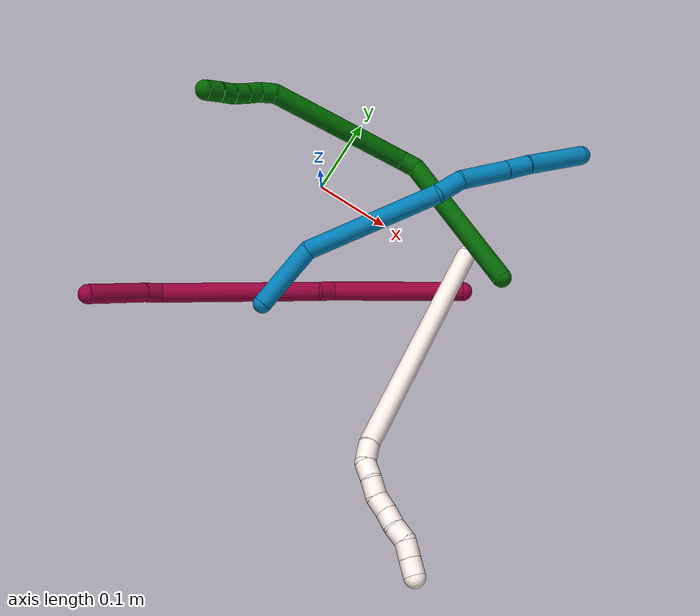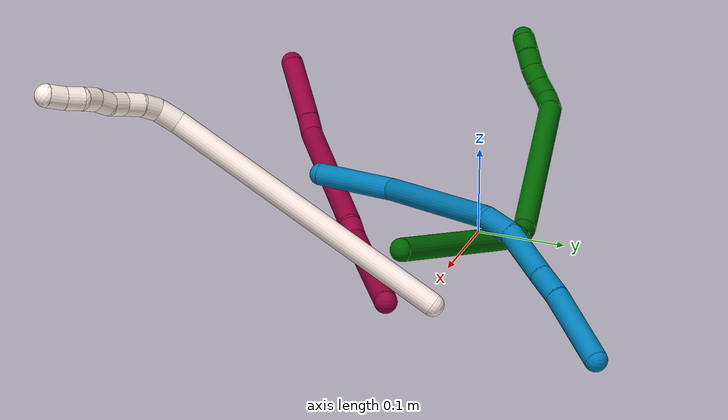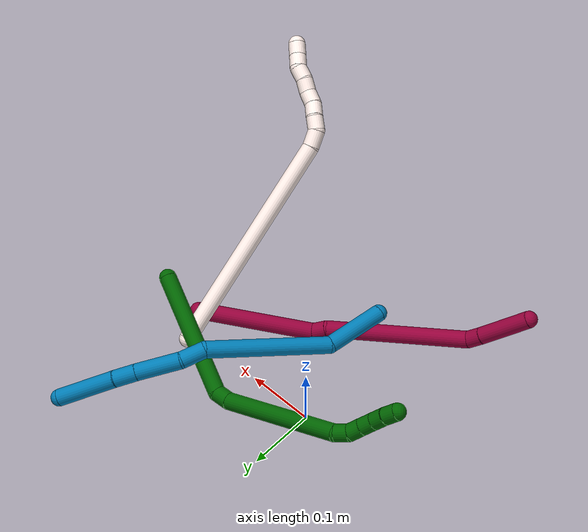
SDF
<sdf version="1.7">
 <world name="default">
  <model name="photoneo_s_sensor">
   <static>1</static>
   <pose>0 0 2 1.57079 1.57079 3.14159</pose>
   <link name="link">
    <inertial><mass>0.1</mass></inertial>
    <sensor name="sensor" type="depth">
     <update_rate>30</update_rate>
     <camera>
      <horizontal_fov>1.22</horizontal_fov>
      <image><width>1920</width><height>1200</height><format>B8G8R8</format></image>
      <clip><near>0.1</near><far>4</far></clip>
      <depth_camera><output>points</output></depth_camera>
     </camera>
     <plugin name="camera_plugin" filename="libgazebo_ros_depth_camera.so">
      <baseline>0.2</baseline>
      <alwaysOn>1</alwaysOn>
      <updateRate>0.0</updateRate>
      <cameraName>camera_ir</cameraName>
      <imageTopicName>/camera/color/image_raw</imageTopicName>
      <cameraInfoTopicName>/camera/color/camera_info</cameraInfoTopicName>
      <depthImageTopicName>/camera/depth/image_raw</depthImageTopicName>
      <depthImageCameraInfoTopicName>/camera/depth/camera_info</depthImageCameraInfoTopicName>
      <pointCloudTopicName>/camera/depth/points</pointCloudTopicName>
      <frameName>fr_optical</frameName>
      <pointCloudCutoff>0.1</pointCloudCutoff>
      <pointCloudCutoffMax>2.0</pointCloudCutoffMax>
      <distortionK1>0</distortionK1>
      <distortionK2>0</distortionK2>
      <distortionK3>0</distortionK3>
      <distortionT1>0</distortionT1>
      <distortionT2>0</distortionT2>
      <CxPrime>0</CxPrime>
      <Cx>0</Cx>
      <Cy>0</Cy>
      <focalLength>0</focalLength>
      <hackBaseline>0</hackBaseline>
     </plugin>
    </sensor>
   </link>
  </model>
  <model name="bin">
   <static>1</static>
   <link name="bottom">
    <collision name="collision-bottom">
     <pose>0 0 -0.01 0 -0 0</pose>
     <geometry><box><size>0.8 0.6 0.02</size></box></geometry>
     <surface>
      <friction><ode><mu>100</mu><mu2>100</mu2></ode></friction>
      <contact><collide_bitmask>65535</collide_bitmask></contact>
     </surface>
    </collision>
   </link>
   <link name="west_wall">
    <collision name="collision-west_wall">
     <pose>-0.41 0 0.1 0 -0 0</pose>
     <geometry><box><size>0.02 0.6 0.2</size></box></geometry>
     <surface>
      <friction><ode><mu>100</mu><mu2>100</mu2></ode></friction>
      <contact><collide_bitmask>65535</collide_bitmask></contact>
     </surface>
    </collision>
   </link>
   <link name="east_wall">
    <collision name="collision-east_wall">
     <pose>0.41 0 0.1 0 -0 0</pose>
     <geometry><box><size>0.02 0.6 0.2</size></box></geometry>
     <surface>
      <friction><ode><mu>100</mu><mu2>100</mu2></ode></friction>
      <contact><collide_bitmask>65535</collide_bitmask></contact>
     </surface>
    </collision>
   </link>
   <link name="south_wall">
    <collision name="collision-south_wall">
     <pose>0 -0.31 0.1 0 -0 0</pose>
     <geometry><box><size>0.8 0.02 0.2</size></box></geometry>
     <surface>
      <friction><ode><mu>100</mu><mu2>100</mu2></ode></friction>
      <contact><collide_bitmask>65535</collide_bitmask></contact>
     </surface>
    </collision>
   </link>
   <link name="north_wall">
    <collision name="collision-north_wall">
     <pose>0 0.31 0.1 0 -0 0</pose>
     <geometry><box><size>0.8 0.02 0.2</size></box></geometry>
     <surface>
      <friction><ode><mu>100</mu><mu2>100</mu2></ode></friction>
      <contact><collide_bitmask>65535</collide_bitmask></contact>
     </surface>
    </collision>
   </link>
  </model>
  <model name="6">
   <static>0</static>
   <link name="6">
    <collision name="collision-cylinder-e_1_1_4">
     <pose>-0.080189 -0.026209 -0.042824 2.59238 -1.0114 -2.20031</pose>
     <geometry><cylinder><radius>0.0125</radius><length>0.18922</length></cylinder></geometry>
     <surface>
      <friction><ode><mu>1.16</mu><mu2>1.16</mu2><slip1>0</slip1><slip2>0</slip2></ode></friction>
      <contact><ode><kp>1e+06</kp><kd>1</kd><max_vel>0</max_vel><min_depth>0.001</min_depth></ode></contact>
     </surface>
    </collision>
    <visual name="visual-cylinder-e_1_1_4">
     <pose>-0.080189 -0.026209 -0.042824 2.59238 -1.0114 -2.20031</pose>
     <geometry><cylinder><radius>0.0125</radius><length>0.18922</length></cylinder></geometry>
     <material><ambient>0 0.392157 0.003922 1</ambient></material>
    </visual>
    <collision name="collision-cylinder-e_2_4_5">
     <pose>-0.166103 -0.05422 -0.09484 2.94798 -0.548557 -2.47693</pose>
     <geometry><cylinder><radius>0.0125</radius><length>0.021958</length></cylinder></geometry>
     <surface>
      <friction><ode><mu>1.16</mu><mu2>1.16</mu2><slip1>0</slip1><slip2>0</slip2></ode></friction>
      <contact><ode><kp>1e+06</kp><kd>1</kd><max_vel>0</max_vel><min_depth>0.001</min_depth></ode></contact>
     </surface>
    </collision>
    <visual name="visual-cylinder-e_2_4_5">
     <pose>-0.166103 -0.05422 -0.09484 2.94798 -0.548557 -2.47693</pose>
     <geometry><cylinder><radius>0.0125</radius><length>0.021958</length></cylinder></geometry>
     <material><ambient>0 0.392157 0.003922 1</ambient></material>
    </visual>
    <collision name="collision-cylinder-e_3_5_6">
     <pose>-0.190053 -0.087585 -0.191016 2.79351 -0.194467 -1.013</pose>
     <geometry><cylinder><radius>0.0125</radius><length>0.18862</length></cylinder></geometry>
     <surface>
      <friction><ode><mu>1.16</mu><mu2>1.16</mu2><slip1>0</slip1><slip2>0</slip2></ode></friction>
      <contact><ode><kp>1e+06</kp><kd>1</kd><max_vel>0</max_vel><min_depth>0.001</min_depth></ode></contact>
     </surface>
    </collision>
    <visual name="visual-cylinder-e_3_5_6">
     <pose>-0.190053 -0.087585 -0.191016 2.79351 -0.194467 -1.013</pose>
     <geometry><cylinder><radius>0.0125</radius><length>0.18862</length></cylinder></geometry>
     <material><ambient>0 0.392157 0.003922 1</ambient></material>
    </visual>
    <collision name="collision-cylinder-e_4_6_7">
     <pose>-0.208252 -0.119215 -0.288087 3.1349 0.002599 0.740757</pose>
     <geometry><cylinder><radius>0.0125</radius><length>0.020175</length></cylinder></geometry>
     <surface>
      <friction><ode><mu>1.16</mu><mu2>1.16</mu2><slip1>0</slip1><slip2>0</slip2></ode></friction>
      <contact><ode><kp>1e+06</kp><kd>1</kd><max_vel>0</max_vel><min_depth>0.001</min_depth></ode></contact>
     </surface>
    </collision>
    <visual name="visual-cylinder-e_4_6_7">
     <pose>-0.208252 -0.119215 -0.288087 3.1349 0.002599 0.740757</pose>
     <geometry><cylinder><radius>0.0125</radius><length>0.020175</length></cylinder></geometry>
     <material><ambient>0 0.392157 0.003922 1</ambient></material>
    </visual>
    <collision name="collision-cylinder-e_5_7_8">
     <pose>-0.204237 -0.119727 -0.307334 3.09309 0.410289 2.90949</pose>
     <geometry><cylinder><radius>0.0125</radius><length>0.020001</length></cylinder></geometry>
     <surface>
      <friction><ode><mu>1.16</mu><mu2>1.16</mu2><slip1>0</slip1><slip2>0</slip2></ode></friction>
      <contact><ode><kp>1e+06</kp><kd>1</kd><max_vel>0</max_vel><min_depth>0.001</min_depth></ode></contact>
     </surface>
    </collision>
    <visual name="visual-cylinder-e_5_7_8">
     <pose>-0.204237 -0.119727 -0.307334 3.09309 0.410289 2.90949</pose>
     <geometry><cylinder><radius>0.0125</radius><length>0.020001</length></cylinder></geometry>
     <material><ambient>0 0.392157 0.003922 1</ambient></material>
    </visual>
    <collision name="collision-cylinder-e_6_8_9">
     <pose>-0.19634 -0.121521 -0.325612 2.99477 0.400979 2.44714</pose>
     <geometry><cylinder><radius>0.0125</radius><length>0.020024</length></cylinder></geometry>
     <surface>
      <friction><ode><mu>1.16</mu><mu2>1.16</mu2><slip1>0</slip1><slip2>0</slip2></ode></friction>
      <contact><ode><kp>1e+06</kp><kd>1</kd><max_vel>0</max_vel><min_depth>0.001</min_depth></ode></contact>
     </surface>
    </collision>
    <visual name="visual-cylinder-e_6_8_9">
     <pose>-0.19634 -0.121521 -0.325612 2.99477 0.400979 2.44714</pose>
     <geometry><cylinder><radius>0.0125</radius><length>0.020024</length></cylinder></geometry>
     <material><ambient>0 0.392157 0.003922 1</ambient></material>
    </visual>
    <collision name="collision-cylinder-e_7_9_10">
     <pose>-0.188681 -0.12568 -0.343564 2.83354 0.384498 1.79502</pose>
     <geometry><cylinder><radius>0.0125</radius><length>0.02</length></cylinder></geometry>
     <surface>
      <friction><ode><mu>1.16</mu><mu2>1.16</mu2><slip1>0</slip1><slip2>0</slip2></ode></friction>
      <contact><ode><kp>1e+06</kp><kd>1</kd><max_vel>0</max_vel><min_depth>0.001</min_depth></ode></contact>
     </surface>
    </collision>
    <visual name="visual-cylinder-e_7_9_10">
     <pose>-0.188681 -0.12568 -0.343564 2.83354 0.384498 1.79502</pose>
     <geometry><cylinder><radius>0.0125</radius><length>0.02</length></cylinder></geometry>
     <material><ambient>0 0.392157 0.003922 1</ambient></material>
    </visual>
    <collision name="collision-cylinder-e_8_10_2">
     <pose>-0.181833 -0.130665 -0.361655 2.91083 0.314898 1.88045</pose>
     <geometry><cylinder><radius>0.0125</radius><length>0.020001</length></cylinder></geometry>
     <surface>
      <friction><ode><mu>1.16</mu><mu2>1.16</mu2><slip1>0</slip1><slip2>0</slip2></ode></friction>
      <contact><ode><kp>1e+06</kp><kd>1</kd><max_vel>0</max_vel><min_depth>0.001</min_depth></ode></contact>
     </surface>
    </collision>
    <visual name="visual-cylinder-e_8_10_2">
     <pose>-0.181833 -0.130665 -0.361655 2.91083 0.314898 1.88045</pose>
     <geometry><cylinder><radius>0.0125</radius><length>0.020001</length></cylinder></geometry>
     <material><ambient>0 0.392157 0.003922 1</ambient></material>
    </visual>
    <collision name="collision-sphere-2">
     <pose>-0.178735 -0.13284 -0.370912 0 -0 0</pose>
     <geometry><sphere><radius>0.0125</radius></sphere></geometry>
     <surface>
      <friction><ode><mu>1.16</mu><mu2>1.16</mu2><slip1>0</slip1><slip2>0</slip2></ode></friction>
      <contact><ode><kp>1e+06</kp><kd>1</kd><max_vel>0</max_vel><min_depth>0.001</min_depth></ode></contact>
     </surface>
    </collision>
    <visual name="visual-sphere-2">
     <pose>-0.178735 -0.13284 -0.370912 0 -0 0</pose>
     <geometry><sphere><radius>0.0125</radius></sphere></geometry>
     <material><ambient>0 0.392157 0.003922 1</ambient></material>
    </visual>
    <collision name="collision-sphere-10">
     <pose>-0.18493 -0.128491 -0.352398 0 -0 0</pose>
     <geometry><sphere><radius>0.0125</radius></sphere></geometry>
     <surface>
      <friction><ode><mu>1.16</mu><mu2>1.16</mu2><slip1>0</slip1><slip2>0</slip2></ode></friction>
      <contact><ode><kp>1e+06</kp><kd>1</kd><max_vel>0</max_vel><min_depth>0.001</min_depth></ode></contact>
     </surface>
    </collision>
    <visual name="visual-sphere-10">
     <pose>-0.18493 -0.128491 -0.352398 0 -0 0</pose>
     <geometry><sphere><radius>0.0125</radius></sphere></geometry>
     <material><ambient>0 0.392157 0.003922 1</ambient></material>
    </visual>
    <collision name="collision-sphere-9">
     <pose>-0.192432 -0.122869 -0.334731 0 -0 0</pose>
     <geometry><sphere><radius>0.0125</radius></sphere></geometry>
     <surface>
      <friction><ode><mu>1.16</mu><mu2>1.16</mu2><slip1>0</slip1><slip2>0</slip2></ode></friction>
      <contact><ode><kp>1e+06</kp><kd>1</kd><max_vel>0</max_vel><min_depth>0.001</min_depth></ode></contact>
     </surface>
    </collision>
    <visual name="visual-sphere-9">
     <pose>-0.192432 -0.122869 -0.334731 0 -0 0</pose>
     <geometry><sphere><radius>0.0125</radius></sphere></geometry>
     <material><ambient>0 0.392157 0.003922 1</ambient></material>
    </visual>
    <collision name="collision-sphere-4">
     <pose>-0.160378 -0.052418 -0.085647 0 -0 0</pose>
     <geometry><sphere><radius>0.0125</radius></sphere></geometry>
     <surface>
      <friction><ode><mu>1.16</mu><mu2>1.16</mu2><slip1>0</slip1><slip2>0</slip2></ode></friction>
      <contact><ode><kp>1e+06</kp><kd>1</kd><max_vel>0</max_vel><min_depth>0.001</min_depth></ode></contact>
     </surface>
    </collision>
    <visual name="visual-sphere-4">
     <pose>-0.160378 -0.052418 -0.085647 0 -0 0</pose>
     <geometry><sphere><radius>0.0125</radius></sphere></geometry>
     <material><ambient>0 0.392157 0.003922 1</ambient></material>
    </visual>
    <collision name="collision-sphere-1">
     <geometry><sphere><radius>0.0125</radius></sphere></geometry>
     <surface>
      <friction><ode><mu>1.16</mu><mu2>1.16</mu2><slip1>0</slip1><slip2>0</slip2></ode></friction>
      <contact><ode><kp>1e+06</kp><kd>1</kd><max_vel>0</max_vel><min_depth>0.001</min_depth></ode></contact>
     </surface>
    </collision>
    <visual name="visual-sphere-1">
     <geometry><sphere><radius>0.0125</radius></sphere></geometry>
     <material><ambient>0 0.392157 0.003922 1</ambient></material>
    </visual>
    <collision name="collision-sphere-8">
     <pose>-0.200248 -0.120172 -0.316494 0 -0 0</pose>
     <geometry><sphere><radius>0.0125</radius></sphere></geometry>
     <surface>
      <friction><ode><mu>1.16</mu><mu2>1.16</mu2><slip1>0</slip1><slip2>0</slip2></ode></friction>
      <contact><ode><kp>1e+06</kp><kd>1</kd><max_vel>0</max_vel><min_depth>0.001</min_depth></ode></contact>
     </surface>
    </collision>
    <visual name="visual-sphere-8">
     <pose>-0.200248 -0.120172 -0.316494 0 -0 0</pose>
     <geometry><sphere><radius>0.0125</radius></sphere></geometry>
     <material><ambient>0 0.392157 0.003922 1</ambient></material>
    </visual>
    <collision name="collision-sphere-5">
     <pose>-0.171829 -0.056023 -0.104034 0 -0 0</pose>
     <geometry><sphere><radius>0.0125</radius></sphere></geometry>
     <surface>
      <friction><ode><mu>1.16</mu><mu2>1.16</mu2><slip1>0</slip1><slip2>0</slip2></ode></friction>
      <contact><ode><kp>1e+06</kp><kd>1</kd><max_vel>0</max_vel><min_depth>0.001</min_depth></ode></contact>
     </surface>
    </collision>
    <visual name="visual-sphere-5">
     <pose>-0.171829 -0.056023 -0.104034 0 -0 0</pose>
     <geometry><sphere><radius>0.0125</radius></sphere></geometry>
     <material><ambient>0 0.392157 0.003922 1</ambient></material>
    </visual>
    <collision name="collision-sphere-6">
     <pose>-0.208278 -0.119148 -0.277999 0 -0 0</pose>
     <geometry><sphere><radius>0.0125</radius></sphere></geometry>
     <surface>
      <friction><ode><mu>1.16</mu><mu2>1.16</mu2><slip1>0</slip1><slip2>0</slip2></ode></friction>
      <contact><ode><kp>1e+06</kp><kd>1</kd><max_vel>0</max_vel><min_depth>0.001</min_depth></ode></contact>
     </surface>
    </collision>
    <visual name="visual-sphere-6">
     <pose>-0.208278 -0.119148 -0.277999 0 -0 0</pose>
     <geometry><sphere><radius>0.0125</radius></sphere></geometry>
     <material><ambient>0 0.392157 0.003922 1</ambient></material>
    </visual>
    <collision name="collision-sphere-7">
     <pose>-0.208226 -0.119283 -0.298174 0 -0 0</pose>
     <geometry><sphere><radius>0.0125</radius></sphere></geometry>
     <surface>
      <friction><ode><mu>1.16</mu><mu2>1.16</mu2><slip1>0</slip1><slip2>0</slip2></ode></friction>
      <contact><ode><kp>1e+06</kp><kd>1</kd><max_vel>0</max_vel><min_depth>0.001</min_depth></ode></contact>
     </surface>
    </collision>
    <visual name="visual-sphere-7">
     <pose>-0.208226 -0.119283 -0.298174 0 -0 0</pose>
     <geometry><sphere><radius>0.0125</radius></sphere></geometry>
     <material><ambient>0 0.392157 0.003922 1</ambient></material>
    </visual>
    <inertial>
     <pose>-0.148594 -0.070061 -0.157599 0 -0 0</pose>
     <mass>0.5</mass>
     <inertia>
      <ixx>-0.000615</ixx>
      <ixy>0</ixy>
      <ixz>0</ixz>
      <iyy>-0.000478</iyy>
      <iyz>0</iyz>
      <izz>0.000913</izz>
     </inertia>
    </inertial>
   </link>
   <pose>0.265672 0.006423 0.096312 -1.95149 -0.725305 -0.73948</pose>
  </model>
  <model name="8">
   <static>0</static>
   <link name="8">
    <collision name="collision-cylinder-e_1_1_4">
     <pose>-0.075283 -0.037719 0.016766 1.15252 -1.06926 -0.734675</pose>
     <geometry><cylinder><radius>0.0125</radius><length>0.171714</length></cylinder></geometry>
     <surface>
      <friction><ode><mu>1.16</mu><mu2>1.16</mu2><slip1>0</slip1><slip2>0</slip2></ode></friction>
      <contact><ode><kp>1e+06</kp><kd>1</kd><max_vel>0</max_vel><min_depth>0.001</min_depth></ode></contact>
     </surface>
    </collision>
    <visual name="visual-cylinder-e_1_1_4">
     <pose>-0.075283 -0.037719 0.016766 1.15252 -1.06926 -0.734675</pose>
     <geometry><cylinder><radius>0.0125</radius><length>0.171714</length></cylinder></geometry>
     <material><ambient>0.584314 0 0.227451 1</ambient></material>
    </visual>
    <collision name="collision-cylinder-e_2_4_5">
     <pose>-0.157724 -0.080193 0.040249 0.615994 -0.715899 -0.236881</pose>
     <geometry><cylinder><radius>0.0125</radius><length>0.021813</length></cylinder></geometry>
     <surface>
      <friction><ode><mu>1.16</mu><mu2>1.16</mu2><slip1>0</slip1><slip2>0</slip2></ode></friction>
      <contact><ode><kp>1e+06</kp><kd>1</kd><max_vel>0</max_vel><min_depth>0.001</min_depth></ode></contact>
     </surface>
    </collision>
    <visual name="visual-cylinder-e_2_4_5">
     <pose>-0.157724 -0.080193 0.040249 0.615994 -0.715899 -0.236881</pose>
     <geometry><cylinder><radius>0.0125</radius><length>0.021813</length></cylinder></geometry>
     <material><ambient>0.584314 0 0.227451 1</ambient></material>
    </visual>
    <collision name="collision-cylinder-e_3_5_6">
     <pose>-0.250192 -0.131711 0.080376 0.950448 -0.977946 -0.534462</pose>
     <geometry><cylinder><radius>0.0125</radius><length>0.205727</length></cylinder></geometry>
     <surface>
      <friction><ode><mu>1.16</mu><mu2>1.16</mu2><slip1>0</slip1><slip2>0</slip2></ode></friction>
      <contact><ode><kp>1e+06</kp><kd>1</kd><max_vel>0</max_vel><min_depth>0.001</min_depth></ode></contact>
     </surface>
    </collision>
    <visual name="visual-cylinder-e_3_5_6">
     <pose>-0.250192 -0.131711 0.080376 0.950448 -0.977946 -0.534462</pose>
     <geometry><cylinder><radius>0.0125</radius><length>0.205727</length></cylinder></geometry>
     <material><ambient>0.584314 0 0.227451 1</ambient></material>
    </visual>
    <collision name="collision-cylinder-e_4_6_7">
     <pose>-0.341984 -0.182595 0.122335 0.449079 -0.599229 -0.140873</pose>
     <geometry><cylinder><radius>0.0125</radius><length>0.022985</length></cylinder></geometry>
     <surface>
      <friction><ode><mu>1.16</mu><mu2>1.16</mu2><slip1>0</slip1><slip2>0</slip2></ode></friction>
      <contact><ode><kp>1e+06</kp><kd>1</kd><max_vel>0</max_vel><min_depth>0.001</min_depth></ode></contact>
     </surface>
    </collision>
    <visual name="visual-cylinder-e_4_6_7">
     <pose>-0.341984 -0.182595 0.122335 0.449079 -0.599229 -0.140873</pose>
     <geometry><cylinder><radius>0.0125</radius><length>0.022985</length></cylinder></geometry>
     <material><ambient>0.584314 0 0.227451 1</ambient></material>
    </visual>
    <collision name="collision-cylinder-e_5_7_2">
     <pose>-0.369269 -0.202296 0.159801 0.494203 -0.564576 -0.146065</pose>
     <geometry><cylinder><radius>0.0125</radius><length>0.077761</length></cylinder></geometry>
     <surface>
      <friction><ode><mu>1.16</mu><mu2>1.16</mu2><slip1>0</slip1><slip2>0</slip2></ode></friction>
      <contact><ode><kp>1e+06</kp><kd>1</kd><max_vel>0</max_vel><min_depth>0.001</min_depth></ode></contact>
     </surface>
    </collision>
    <visual name="visual-cylinder-e_5_7_2">
     <pose>-0.369269 -0.202296 0.159801 0.494203 -0.564576 -0.146065</pose>
     <geometry><cylinder><radius>0.0125</radius><length>0.077761</length></cylinder></geometry>
     <material><ambient>0.584314 0 0.227451 1</ambient></material>
    </visual>
    <collision name="collision-sphere-2">
     <pose>-0.390073 -0.217876 0.188717 0 -0 0</pose>
     <geometry><sphere><radius>0.0125</radius></sphere></geometry>
     <surface>
      <friction><ode><mu>1.16</mu><mu2>1.16</mu2><slip1>0</slip1><slip2>0</slip2></ode></friction>
      <contact><ode><kp>1e+06</kp><kd>1</kd><max_vel>0</max_vel><min_depth>0.001</min_depth></ode></contact>
     </surface>
    </collision>
    <visual name="visual-sphere-2">
     <pose>-0.390073 -0.217876 0.188717 0 -0 0</pose>
     <geometry><sphere><radius>0.0125</radius></sphere></geometry>
     <material><ambient>0.584314 0 0.227451 1</ambient></material>
    </visual>
    <collision name="collision-sphere-7">
     <pose>-0.348466 -0.186715 0.130884 0 -0 0</pose>
     <geometry><sphere><radius>0.0125</radius></sphere></geometry>
     <surface>
      <friction><ode><mu>1.16</mu><mu2>1.16</mu2><slip1>0</slip1><slip2>0</slip2></ode></friction>
      <contact><ode><kp>1e+06</kp><kd>1</kd><max_vel>0</max_vel><min_depth>0.001</min_depth></ode></contact>
     </surface>
    </collision>
    <visual name="visual-sphere-7">
     <pose>-0.348466 -0.186715 0.130884 0 -0 0</pose>
     <geometry><sphere><radius>0.0125</radius></sphere></geometry>
     <material><ambient>0.584314 0 0.227451 1</ambient></material>
    </visual>
    <collision name="collision-sphere-6">
     <pose>-0.335502 -0.178475 0.113786 0 -0 0</pose>
     <geometry><sphere><radius>0.0125</radius></sphere></geometry>
     <surface>
      <friction><ode><mu>1.16</mu><mu2>1.16</mu2><slip1>0</slip1><slip2>0</slip2></ode></friction>
      <contact><ode><kp>1e+06</kp><kd>1</kd><max_vel>0</max_vel><min_depth>0.001</min_depth></ode></contact>
     </surface>
    </collision>
    <visual name="visual-sphere-6">
     <pose>-0.335502 -0.178475 0.113786 0 -0 0</pose>
     <geometry><sphere><radius>0.0125</radius></sphere></geometry>
     <material><ambient>0.584314 0 0.227451 1</ambient></material>
    </visual>
    <collision name="collision-sphere-5">
     <pose>-0.164882 -0.084947 0.046966 0 -0 0</pose>
     <geometry><sphere><radius>0.0125</radius></sphere></geometry>
     <surface>
      <friction><ode><mu>1.16</mu><mu2>1.16</mu2><slip1>0</slip1><slip2>0</slip2></ode></friction>
      <contact><ode><kp>1e+06</kp><kd>1</kd><max_vel>0</max_vel><min_depth>0.001</min_depth></ode></contact>
     </surface>
    </collision>
    <visual name="visual-sphere-5">
     <pose>-0.164882 -0.084947 0.046966 0 -0 0</pose>
     <geometry><sphere><radius>0.0125</radius></sphere></geometry>
     <material><ambient>0.584314 0 0.227451 1</ambient></material>
    </visual>
    <collision name="collision-sphere-1">
     <geometry><sphere><radius>0.0125</radius></sphere></geometry>
     <surface>
      <friction><ode><mu>1.16</mu><mu2>1.16</mu2><slip1>0</slip1><slip2>0</slip2></ode></friction>
      <contact><ode><kp>1e+06</kp><kd>1</kd><max_vel>0</max_vel><min_depth>0.001</min_depth></ode></contact>
     </surface>
    </collision>
    <visual name="visual-sphere-1">
     <geometry><sphere><radius>0.0125</radius></sphere></geometry>
     <material><ambient>0.584314 0 0.227451 1</ambient></material>
    </visual>
    <collision name="collision-sphere-4">
     <pose>-0.150566 -0.075438 0.033533 0 -0 0</pose>
     <geometry><sphere><radius>0.0125</radius></sphere></geometry>
     <surface>
      <friction><ode><mu>1.16</mu><mu2>1.16</mu2><slip1>0</slip1><slip2>0</slip2></ode></friction>
      <contact><ode><kp>1e+06</kp><kd>1</kd><max_vel>0</max_vel><min_depth>0.001</min_depth></ode></contact>
     </surface>
    </collision>
    <visual name="visual-sphere-4">
     <pose>-0.150566 -0.075438 0.033533 0 -0 0</pose>
     <geometry><sphere><radius>0.0125</radius></sphere></geometry>
     <material><ambient>0.584314 0 0.227451 1</ambient></material>
    </visual>
    <inertial>
     <pose>-0.208829 -0.110501 0.071061 0 -0 0</pose>
     <mass>0.5</mass>
     <inertia>
      <ixx>0.000161</ixx>
      <ixy>0</ixy>
      <ixz>0</ixz>
      <iyy>0.000651</iyy>
      <iyz>0</iyz>
      <izz>0.001564</izz>
     </inertia>
    </inertial>
   </link>
   <pose>0.235607 -0.021771 0.017498 0.081681 -0.216514 0.083935</pose>
  </model>
  <model name="9">
   <static>0</static>
   <link name="9">
    <collision name="collision-cylinder-e_1_1_4">
     <pose>0.031983 0.026974 0.0178 -0.987495 0.780194 -0.435571</pose>
     <geometry><cylinder><radius>0.0125</radius><length>0.090937</length></cylinder></geometry>
     <surface>
      <friction><ode><mu>1.16</mu><mu2>1.16</mu2><slip1>0</slip1><slip2>0</slip2></ode></friction>
      <contact><ode><kp>1e+06</kp><kd>1</kd><max_vel>0</max_vel><min_depth>0.001</min_depth></ode></contact>
     </surface>
    </collision>
    <visual name="visual-cylinder-e_1_1_4">
     <pose>0.031983 0.026974 0.0178 -0.987495 0.780194 -0.435571</pose>
     <geometry><cylinder><radius>0.0125</radius><length>0.090937</length></cylinder></geometry>
     <material><ambient>0 0.490196 0.709804 1</ambient></material>
    </visual>
    <collision name="collision-cylinder-e_2_4_5">
     <pose>0.13447 0.066636 0.092763 -0.218407 0.877727 -0.102838</pose>
     <geometry><cylinder><radius>0.0125</radius><length>0.183294</length></cylinder></geometry>
     <surface>
      <friction><ode><mu>1.16</mu><mu2>1.16</mu2><slip1>0</slip1><slip2>0</slip2></ode></friction>
      <contact><ode><kp>1e+06</kp><kd>1</kd><max_vel>0</max_vel><min_depth>0.001</min_depth></ode></contact>
     </surface>
    </collision>
    <visual name="visual-cylinder-e_2_4_5">
     <pose>0.13447 0.066636 0.092763 -0.218407 0.877727 -0.102838</pose>
     <geometry><cylinder><radius>0.0125</radius><length>0.183294</length></cylinder></geometry>
     <material><ambient>0 0.490196 0.709804 1</ambient></material>
    </visual>
    <collision name="collision-cylinder-e_3_5_6">
     <pose>0.221297 0.08521 0.154622 -0.897503 1.13853 -0.597813</pose>
     <geometry><cylinder><radius>0.0125</radius><length>0.035956</length></cylinder></geometry>
     <surface>
      <friction><ode><mu>1.16</mu><mu2>1.16</mu2><slip1>0</slip1><slip2>0</slip2></ode></friction>
      <contact><ode><kp>1e+06</kp><kd>1</kd><max_vel>0</max_vel><min_depth>0.001</min_depth></ode></contact>
     </surface>
    </collision>
    <visual name="visual-cylinder-e_3_5_6">
     <pose>0.221297 0.08521 0.154622 -0.897503 1.13853 -0.597813</pose>
     <geometry><cylinder><radius>0.0125</radius><length>0.035956</length></cylinder></geometry>
     <material><ambient>0 0.490196 0.709804 1</ambient></material>
    </visual>
    <collision name="collision-cylinder-e_4_6_7">
     <pose>0.270731 0.092628 0.164842 -0.270063 1.39937 -0.227729</pose>
     <geometry><cylinder><radius>0.0125</radius><length>0.067204</length></cylinder></geometry>
     <surface>
      <friction><ode><mu>1.16</mu><mu2>1.16</mu2><slip1>0</slip1><slip2>0</slip2></ode></friction>
      <contact><ode><kp>1e+06</kp><kd>1</kd><max_vel>0</max_vel><min_depth>0.001</min_depth></ode></contact>
     </surface>
    </collision>
    <visual name="visual-cylinder-e_4_6_7">
     <pose>0.270731 0.092628 0.164842 -0.270063 1.39937 -0.227729</pose>
     <geometry><cylinder><radius>0.0125</radius><length>0.067204</length></cylinder></geometry>
     <material><ambient>0 0.490196 0.709804 1</ambient></material>
    </visual>
    <collision name="collision-cylinder-e_5_7_8">
     <pose>0.320321 0.095482 0.172883 -0.484659 1.39988 -0.410492</pose>
     <geometry><cylinder><radius>0.0125</radius><length>0.033449</length></cylinder></geometry>
     <surface>
      <friction><ode><mu>1.16</mu><mu2>1.16</mu2><slip1>0</slip1><slip2>0</slip2></ode></friction>
      <contact><ode><kp>1e+06</kp><kd>1</kd><max_vel>0</max_vel><min_depth>0.001</min_depth></ode></contact>
     </surface>
    </collision>
    <visual name="visual-cylinder-e_5_7_8">
     <pose>0.320321 0.095482 0.172883 -0.484659 1.39988 -0.410492</pose>
     <geometry><cylinder><radius>0.0125</radius><length>0.033449</length></cylinder></geometry>
     <material><ambient>0 0.490196 0.709804 1</ambient></material>
    </visual>
    <collision name="collision-cylinder-e_6_8_2">
     <pose>0.381291 0.098448 0.177716 -0.616313 1.50709 -0.580413</pose>
     <geometry><cylinder><radius>0.0125</radius><length>0.08916</length></cylinder></geometry>
     <surface>
      <friction><ode><mu>1.16</mu><mu2>1.16</mu2><slip1>0</slip1><slip2>0</slip2></ode></friction>
      <contact><ode><kp>1e+06</kp><kd>1</kd><max_vel>0</max_vel><min_depth>0.001</min_depth></ode></contact>
     </surface>
    </collision>
    <visual name="visual-cylinder-e_6_8_2">
     <pose>0.381291 0.098448 0.177716 -0.616313 1.50709 -0.580413</pose>
     <geometry><cylinder><radius>0.0125</radius><length>0.08916</length></cylinder></geometry>
     <material><ambient>0 0.490196 0.709804 1</ambient></material>
    </visual>
    <collision name="collision-sphere-2">
     <pose>0.425781 0.100089 0.180032 0 -0 0</pose>
     <geometry><sphere><radius>0.0125</radius></sphere></geometry>
     <surface>
      <friction><ode><mu>1.16</mu><mu2>1.16</mu2><slip1>0</slip1><slip2>0</slip2></ode></friction>
      <contact><ode><kp>1e+06</kp><kd>1</kd><max_vel>0</max_vel><min_depth>0.001</min_depth></ode></contact>
     </surface>
    </collision>
    <visual name="visual-sphere-2">
     <pose>0.425781 0.100089 0.180032 0 -0 0</pose>
     <geometry><sphere><radius>0.0125</radius></sphere></geometry>
     <material><ambient>0 0.490196 0.709804 1</ambient></material>
    </visual>
    <collision name="collision-sphere-4">
     <pose>0.063967 0.053948 0.0356 0 -0 0</pose>
     <geometry><sphere><radius>0.0125</radius></sphere></geometry>
     <surface>
      <friction><ode><mu>1.16</mu><mu2>1.16</mu2><slip1>0</slip1><slip2>0</slip2></ode></friction>
      <contact><ode><kp>1e+06</kp><kd>1</kd><max_vel>0</max_vel><min_depth>0.001</min_depth></ode></contact>
     </surface>
    </collision>
    <visual name="visual-sphere-4">
     <pose>0.063967 0.053948 0.0356 0 -0 0</pose>
     <geometry><sphere><radius>0.0125</radius></sphere></geometry>
     <material><ambient>0 0.490196 0.709804 1</ambient></material>
    </visual>
    <collision name="collision-sphere-1">
     <geometry><sphere><radius>0.0125</radius></sphere></geometry>
     <surface>
      <friction><ode><mu>1.16</mu><mu2>1.16</mu2><slip1>0</slip1><slip2>0</slip2></ode></friction>
      <contact><ode><kp>1e+06</kp><kd>1</kd><max_vel>0</max_vel><min_depth>0.001</min_depth></ode></contact>
     </surface>
    </collision>
    <visual name="visual-sphere-1">
     <geometry><sphere><radius>0.0125</radius></sphere></geometry>
     <material><ambient>0 0.490196 0.709804 1</ambient></material>
    </visual>
    <collision name="collision-sphere-8">
     <pose>0.336802 0.096807 0.1754 0 -0 0</pose>
     <geometry><sphere><radius>0.0125</radius></sphere></geometry>
     <surface>
      <friction><ode><mu>1.16</mu><mu2>1.16</mu2><slip1>0</slip1><slip2>0</slip2></ode></friction>
      <contact><ode><kp>1e+06</kp><kd>1</kd><max_vel>0</max_vel><min_depth>0.001</min_depth></ode></contact>
     </surface>
    </collision>
    <visual name="visual-sphere-8">
     <pose>0.336802 0.096807 0.1754 0 -0 0</pose>
     <geometry><sphere><radius>0.0125</radius></sphere></geometry>
     <material><ambient>0 0.490196 0.709804 1</ambient></material>
    </visual>
    <collision name="collision-sphere-5">
     <pose>0.204973 0.079323 0.149925 0 -0 0</pose>
     <geometry><sphere><radius>0.0125</radius></sphere></geometry>
     <surface>
      <friction><ode><mu>1.16</mu><mu2>1.16</mu2><slip1>0</slip1><slip2>0</slip2></ode></friction>
      <contact><ode><kp>1e+06</kp><kd>1</kd><max_vel>0</max_vel><min_depth>0.001</min_depth></ode></contact>
     </surface>
    </collision>
    <visual name="visual-sphere-5">
     <pose>0.204973 0.079323 0.149925 0 -0 0</pose>
     <geometry><sphere><radius>0.0125</radius></sphere></geometry>
     <material><ambient>0 0.490196 0.709804 1</ambient></material>
    </visual>
    <collision name="collision-sphere-6">
     <pose>0.237621 0.091098 0.159318 0 -0 0</pose>
     <geometry><sphere><radius>0.0125</radius></sphere></geometry>
     <surface>
      <friction><ode><mu>1.16</mu><mu2>1.16</mu2><slip1>0</slip1><slip2>0</slip2></ode></friction>
      <contact><ode><kp>1e+06</kp><kd>1</kd><max_vel>0</max_vel><min_depth>0.001</min_depth></ode></contact>
     </surface>
    </collision>
    <visual name="visual-sphere-6">
     <pose>0.237621 0.091098 0.159318 0 -0 0</pose>
     <geometry><sphere><radius>0.0125</radius></sphere></geometry>
     <material><ambient>0 0.490196 0.709804 1</ambient></material>
    </visual>
    <collision name="collision-sphere-7">
     <pose>0.30384 0.094157 0.170366 0 -0 0</pose>
     <geometry><sphere><radius>0.0125</radius></sphere></geometry>
     <surface>
      <friction><ode><mu>1.16</mu><mu2>1.16</mu2><slip1>0</slip1><slip2>0</slip2></ode></friction>
      <contact><ode><kp>1e+06</kp><kd>1</kd><max_vel>0</max_vel><min_depth>0.001</min_depth></ode></contact>
     </surface>
    </collision>
    <visual name="visual-sphere-7">
     <pose>0.30384 0.094157 0.170366 0 -0 0</pose>
     <geometry><sphere><radius>0.0125</radius></sphere></geometry>
     <material><ambient>0 0.490196 0.709804 1</ambient></material>
    </visual>
    <inertial>
     <pose>0.196835 0.071854 0.113774 0 -0 0</pose>
     <mass>0.5</mass>
     <inertia>
      <ixx>0.000358</ixx>
      <ixy>0</ixy>
      <ixz>0</ixz>
      <iyy>0.000612</iyy>
      <iyz>0</iyz>
      <izz>-0.000649</izz>
     </inertia>
    </inertial>
   </link>
   <pose>0.024236 -0.179219 0.051476 -0.01653 0.480905 0.794132</pose>
  </model>
  <model name="11">
   <static>0</static>
   <link name="11">
    <collision name="collision-cylinder-e_1_1_4">
     <pose>-0.007036 -0.025677 0.163407 0.155861 -0.04251 -0.00332</pose>
     <geometry><cylinder><radius>0.0125</radius><length>0.331122</length></cylinder></geometry>
     <surface>
      <friction><ode><mu>1.16</mu><mu2>1.16</mu2><slip1>0</slip1><slip2>0</slip2></ode></friction>
      <contact><ode><kp>1e+06</kp><kd>1</kd><max_vel>0</max_vel><min_depth>0.001</min_depth></ode></contact>
     </surface>
    </collision>
    <visual name="visual-cylinder-e_1_1_4">
     <pose>-0.007036 -0.025677 0.163407 0.155861 -0.04251 -0.00332</pose>
     <geometry><cylinder><radius>0.0125</radius><length>0.331122</length></cylinder></geometry>
     <material><ambient>1 0.933333 0.909804 1</ambient></material>
    </visual>
    <collision name="collision-cylinder-e_2_4_5">
     <pose>-0.012958 -0.050823 0.339572 -0.041585 0.08697 -0.00181</pose>
     <geometry><cylinder><radius>0.0125</radius><length>0.025636</length></cylinder></geometry>
     <surface>
      <friction><ode><mu>1.16</mu><mu2>1.16</mu2><slip1>0</slip1><slip2>0</slip2></ode></friction>
      <contact><ode><kp>1e+06</kp><kd>1</kd><max_vel>0</max_vel><min_depth>0.001</min_depth></ode></contact>
     </surface>
    </collision>
    <visual name="visual-cylinder-e_2_4_5">
     <pose>-0.012958 -0.050823 0.339572 -0.041585 0.08697 -0.00181</pose>
     <geometry><cylinder><radius>0.0125</radius><length>0.025636</length></cylinder></geometry>
     <material><ambient>1 0.933333 0.909804 1</ambient></material>
    </visual>
    <collision name="collision-cylinder-e_3_5_6">
     <pose>-0.007598 -0.046204 0.360962 -0.442364 0.418443 -0.095416</pose>
     <geometry><cylinder><radius>0.0125</radius><length>0.020905</length></cylinder></geometry>
     <surface>
      <friction><ode><mu>1.16</mu><mu2>1.16</mu2><slip1>0</slip1><slip2>0</slip2></ode></friction>
      <contact><ode><kp>1e+06</kp><kd>1</kd><max_vel>0</max_vel><min_depth>0.001</min_depth></ode></contact>
     </surface>
    </collision>
    <visual name="visual-cylinder-e_3_5_6">
     <pose>-0.007598 -0.046204 0.360962 -0.442364 0.418443 -0.095416</pose>
     <geometry><cylinder><radius>0.0125</radius><length>0.020905</length></cylinder></geometry>
     <material><ambient>1 0.933333 0.909804 1</ambient></material>
    </visual>
    <collision name="collision-cylinder-e_4_6_7">
     <pose>0.00267 -0.039524 0.378003 -0.298948 0.6 -0.093103</pose>
     <geometry><cylinder><radius>0.0125</radius><length>0.021325</length></cylinder></geometry>
     <surface>
      <friction><ode><mu>1.16</mu><mu2>1.16</mu2><slip1>0</slip1><slip2>0</slip2></ode></friction>
      <contact><ode><kp>1e+06</kp><kd>1</kd><max_vel>0</max_vel><min_depth>0.001</min_depth></ode></contact>
     </surface>
    </collision>
    <visual name="visual-cylinder-e_4_6_7">
     <pose>0.00267 -0.039524 0.378003 -0.298948 0.6 -0.093103</pose>
     <geometry><cylinder><radius>0.0125</radius><length>0.021325</length></cylinder></geometry>
     <material><ambient>1 0.933333 0.909804 1</ambient></material>
    </visual>
    <collision name="collision-cylinder-e_5_7_8">
     <pose>0.014571 -0.031783 0.392822 -0.6768 0.620901 -0.224868</pose>
     <geometry><cylinder><radius>0.0125</radius><length>0.020218</length></cylinder></geometry>
     <surface>
      <friction><ode><mu>1.16</mu><mu2>1.16</mu2><slip1>0</slip1><slip2>0</slip2></ode></friction>
      <contact><ode><kp>1e+06</kp><kd>1</kd><max_vel>0</max_vel><min_depth>0.001</min_depth></ode></contact>
     </surface>
    </collision>
    <visual name="visual-cylinder-e_5_7_8">
     <pose>0.014571 -0.031783 0.392822 -0.6768 0.620901 -0.224868</pose>
     <geometry><cylinder><radius>0.0125</radius><length>0.020218</length></cylinder></geometry>
     <material><ambient>1 0.933333 0.909804 1</ambient></material>
    </visual>
    <collision name="collision-cylinder-e_6_8_9">
     <pose>0.024183 -0.021431 0.407023 -0.588677 0.378941 -0.116138</pose>
     <geometry><cylinder><radius>0.0125</radius><length>0.020168</length></cylinder></geometry>
     <surface>
      <friction><ode><mu>1.16</mu><mu2>1.16</mu2><slip1>0</slip1><slip2>0</slip2></ode></friction>
      <contact><ode><kp>1e+06</kp><kd>1</kd><max_vel>0</max_vel><min_depth>0.001</min_depth></ode></contact>
     </surface>
    </collision>
    <visual name="visual-cylinder-e_6_8_9">
     <pose>0.024183 -0.021431 0.407023 -0.588677 0.378941 -0.116138</pose>
     <geometry><cylinder><radius>0.0125</radius><length>0.020168</length></cylinder></geometry>
     <material><ambient>1 0.933333 0.909804 1</ambient></material>
    </visual>
    <collision name="collision-cylinder-e_7_9_10">
     <pose>0.033212 -0.010318 0.421001 -0.762626 0.554528 -0.227226</pose>
     <geometry><cylinder><radius>0.0125</radius><length>0.020128</length></cylinder></geometry>
     <surface>
      <friction><ode><mu>1.16</mu><mu2>1.16</mu2><slip1>0</slip1><slip2>0</slip2></ode></friction>
      <contact><ode><kp>1e+06</kp><kd>1</kd><max_vel>0</max_vel><min_depth>0.001</min_depth></ode></contact>
     </surface>
    </collision>
    <visual name="visual-cylinder-e_7_9_10">
     <pose>0.033212 -0.010318 0.421001 -0.762626 0.554528 -0.227226</pose>
     <geometry><cylinder><radius>0.0125</radius><length>0.020128</length></cylinder></geometry>
     <material><ambient>1 0.933333 0.909804 1</ambient></material>
    </visual>
    <collision name="collision-cylinder-e_8_10_11">
     <pose>0.044388 -0.002496 0.43515 -0.235697 0.622507 -0.076142</pose>
     <geometry><cylinder><radius>0.0125</radius><length>0.02016</length></cylinder></geometry>
     <surface>
      <friction><ode><mu>1.16</mu><mu2>1.16</mu2><slip1>0</slip1><slip2>0</slip2></ode></friction>
      <contact><ode><kp>1e+06</kp><kd>1</kd><max_vel>0</max_vel><min_depth>0.001</min_depth></ode></contact>
     </surface>
    </collision>
    <visual name="visual-cylinder-e_8_10_11">
     <pose>0.044388 -0.002496 0.43515 -0.235697 0.622507 -0.076142</pose>
     <geometry><cylinder><radius>0.0125</radius><length>0.02016</length></cylinder></geometry>
     <material><ambient>1 0.933333 0.909804 1</ambient></material>
    </visual>
    <collision name="collision-cylinder-e_9_11_2">
     <pose>0.055306 0.002063 0.451539 -0.304259 0.518564 -0.081289</pose>
     <geometry><cylinder><radius>0.0125</radius><length>0.020339</length></cylinder></geometry>
     <surface>
      <friction><ode><mu>1.16</mu><mu2>1.16</mu2><slip1>0</slip1><slip2>0</slip2></ode></friction>
      <contact><ode><kp>1e+06</kp><kd>1</kd><max_vel>0</max_vel><min_depth>0.001</min_depth></ode></contact>
     </surface>
    </collision>
    <visual name="visual-cylinder-e_9_11_2">
     <pose>0.055306 0.002063 0.451539 -0.304259 0.518564 -0.081289</pose>
     <geometry><cylinder><radius>0.0125</radius><length>0.020339</length></cylinder></geometry>
     <material><ambient>1 0.933333 0.909804 1</ambient></material>
    </visual>
    <collision name="collision-sphere-2">
     <pose>0.060346 0.004709 0.459966 0 -0 0</pose>
     <geometry><sphere><radius>0.0125</radius></sphere></geometry>
     <surface>
      <friction><ode><mu>1.16</mu><mu2>1.16</mu2><slip1>0</slip1><slip2>0</slip2></ode></friction>
      <contact><ode><kp>1e+06</kp><kd>1</kd><max_vel>0</max_vel><min_depth>0.001</min_depth></ode></contact>
     </surface>
    </collision>
    <visual name="visual-sphere-2">
     <pose>0.060346 0.004709 0.459966 0 -0 0</pose>
     <geometry><sphere><radius>0.0125</radius></sphere></geometry>
     <material><ambient>1 0.933333 0.909804 1</ambient></material>
    </visual>
    <collision name="collision-sphere-11">
     <pose>0.050266 -0.000583 0.443112 0 -0 0</pose>
     <geometry><sphere><radius>0.0125</radius></sphere></geometry>
     <surface>
      <friction><ode><mu>1.16</mu><mu2>1.16</mu2><slip1>0</slip1><slip2>0</slip2></ode></friction>
      <contact><ode><kp>1e+06</kp><kd>1</kd><max_vel>0</max_vel><min_depth>0.001</min_depth></ode></contact>
     </surface>
    </collision>
    <visual name="visual-sphere-11">
     <pose>0.050266 -0.000583 0.443112 0 -0 0</pose>
     <geometry><sphere><radius>0.0125</radius></sphere></geometry>
     <material><ambient>1 0.933333 0.909804 1</ambient></material>
    </visual>
    <collision name="collision-sphere-10">
     <pose>0.038511 -0.004408 0.427187 0 -0 0</pose>
     <geometry><sphere><radius>0.0125</radius></sphere></geometry>
     <surface>
      <friction><ode><mu>1.16</mu><mu2>1.16</mu2><slip1>0</slip1><slip2>0</slip2></ode></friction>
      <contact><ode><kp>1e+06</kp><kd>1</kd><max_vel>0</max_vel><min_depth>0.001</min_depth></ode></contact>
     </surface>
    </collision>
    <visual name="visual-sphere-10">
     <pose>0.038511 -0.004408 0.427187 0 -0 0</pose>
     <geometry><sphere><radius>0.0125</radius></sphere></geometry>
     <material><ambient>1 0.933333 0.909804 1</ambient></material>
    </visual>
    <collision name="collision-sphere-9">
     <pose>0.027913 -0.016229 0.414815 0 -0 0</pose>
     <geometry><sphere><radius>0.0125</radius></sphere></geometry>
     <surface>
      <friction><ode><mu>1.16</mu><mu2>1.16</mu2><slip1>0</slip1><slip2>0</slip2></ode></friction>
      <contact><ode><kp>1e+06</kp><kd>1</kd><max_vel>0</max_vel><min_depth>0.001</min_depth></ode></contact>
     </surface>
    </collision>
    <visual name="visual-sphere-9">
     <pose>0.027913 -0.016229 0.414815 0 -0 0</pose>
     <geometry><sphere><radius>0.0125</radius></sphere></geometry>
     <material><ambient>1 0.933333 0.909804 1</ambient></material>
    </visual>
    <collision name="collision-sphere-4">
     <pose>-0.014072 -0.051354 0.326813 0 -0 0</pose>
     <geometry><sphere><radius>0.0125</radius></sphere></geometry>
     <surface>
      <friction><ode><mu>1.16</mu><mu2>1.16</mu2><slip1>0</slip1><slip2>0</slip2></ode></friction>
      <contact><ode><kp>1e+06</kp><kd>1</kd><max_vel>0</max_vel><min_depth>0.001</min_depth></ode></contact>
     </surface>
    </collision>
    <visual name="visual-sphere-4">
     <pose>-0.014072 -0.051354 0.326813 0 -0 0</pose>
     <geometry><sphere><radius>0.0125</radius></sphere></geometry>
     <material><ambient>1 0.933333 0.909804 1</ambient></material>
    </visual>
    <collision name="collision-sphere-1">
     <geometry><sphere><radius>0.0125</radius></sphere></geometry>
     <surface>
      <friction><ode><mu>1.16</mu><mu2>1.16</mu2><slip1>0</slip1><slip2>0</slip2></ode></friction>
      <contact><ode><kp>1e+06</kp><kd>1</kd><max_vel>0</max_vel><min_depth>0.001</min_depth></ode></contact>
     </surface>
    </collision>
    <visual name="visual-sphere-1">
     <geometry><sphere><radius>0.0125</radius></sphere></geometry>
     <material><ambient>1 0.933333 0.909804 1</ambient></material>
    </visual>
    <collision name="collision-sphere-8">
     <pose>0.020452 -0.026633 0.399232 0 -0 0</pose>
     <geometry><sphere><radius>0.0125</radius></sphere></geometry>
     <surface>
      <friction><ode><mu>1.16</mu><mu2>1.16</mu2><slip1>0</slip1><slip2>0</slip2></ode></friction>
      <contact><ode><kp>1e+06</kp><kd>1</kd><max_vel>0</max_vel><min_depth>0.001</min_depth></ode></contact>
     </surface>
    </collision>
    <visual name="visual-sphere-8">
     <pose>0.020452 -0.026633 0.399232 0 -0 0</pose>
     <geometry><sphere><radius>0.0125</radius></sphere></geometry>
     <material><ambient>1 0.933333 0.909804 1</ambient></material>
    </visual>
    <collision name="collision-sphere-5">
     <pose>-0.011845 -0.050292 0.35233 0 -0 0</pose>
     <geometry><sphere><radius>0.0125</radius></sphere></geometry>
     <surface>
      <friction><ode><mu>1.16</mu><mu2>1.16</mu2><slip1>0</slip1><slip2>0</slip2></ode></friction>
      <contact><ode><kp>1e+06</kp><kd>1</kd><max_vel>0</max_vel><min_depth>0.001</min_depth></ode></contact>
     </surface>
    </collision>
    <visual name="visual-sphere-5">
     <pose>-0.011845 -0.050292 0.35233 0 -0 0</pose>
     <geometry><sphere><radius>0.0125</radius></sphere></geometry>
     <material><ambient>1 0.933333 0.909804 1</ambient></material>
    </visual>
    <collision name="collision-sphere-6">
     <pose>-0.003351 -0.042116 0.369593 0 -0 0</pose>
     <geometry><sphere><radius>0.0125</radius></sphere></geometry>
     <surface>
      <friction><ode><mu>1.16</mu><mu2>1.16</mu2><slip1>0</slip1><slip2>0</slip2></ode></friction>
      <contact><ode><kp>1e+06</kp><kd>1</kd><max_vel>0</max_vel><min_depth>0.001</min_depth></ode></contact>
     </surface>
    </collision>
    <visual name="visual-sphere-6">
     <pose>-0.003351 -0.042116 0.369593 0 -0 0</pose>
     <geometry><sphere><radius>0.0125</radius></sphere></geometry>
     <material><ambient>1 0.933333 0.909804 1</ambient></material>
    </visual>
    <collision name="collision-sphere-7">
     <pose>0.00869 -0.036932 0.386412 0 -0 0</pose>
     <geometry><sphere><radius>0.0125</radius></sphere></geometry>
     <surface>
      <friction><ode><mu>1.16</mu><mu2>1.16</mu2><slip1>0</slip1><slip2>0</slip2></ode></friction>
      <contact><ode><kp>1e+06</kp><kd>1</kd><max_vel>0</max_vel><min_depth>0.001</min_depth></ode></contact>
     </surface>
    </collision>
    <visual name="visual-sphere-7">
     <pose>0.00869 -0.036932 0.386412 0 -0 0</pose>
     <geometry><sphere><radius>0.0125</radius></sphere></geometry>
     <material><ambient>1 0.933333 0.909804 1</ambient></material>
    </visual>
    <inertial>
     <pose>0.001413 -0.025809 0.242001 0 -0 0</pose>
     <mass>0.5</mass>
     <inertia>
      <ixx>0.00304</ixx>
      <ixy>0</ixy>
      <ixz>0</ixz>
      <iyy>0.003003</iyy>
      <iyz>0</iyz>
      <izz>0.000627</izz>
     </inertia>
    </inertial>
   </link>
   <pose>0.213763 0.022866 0.012263 0.72812 0.669582 -0.366569</pose>
  </model>
 </world>
</sdf>
